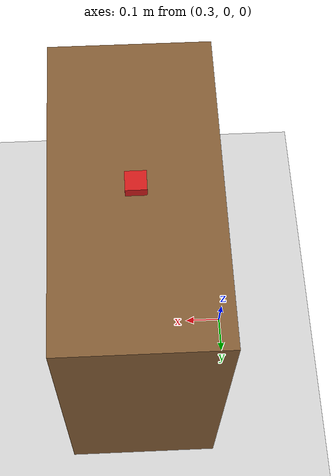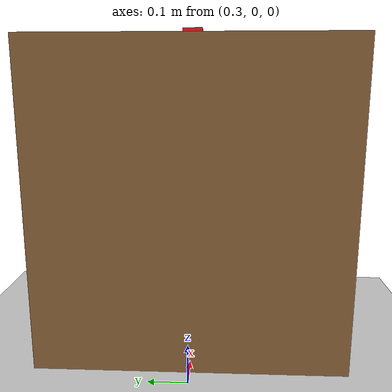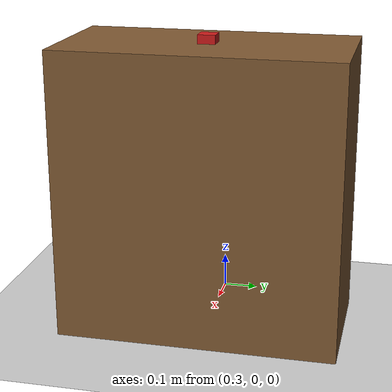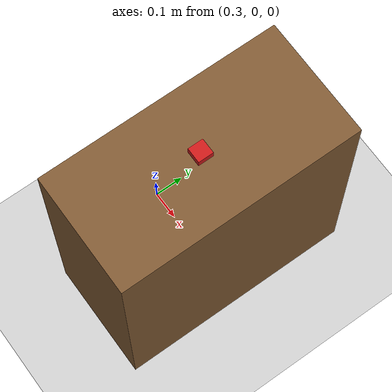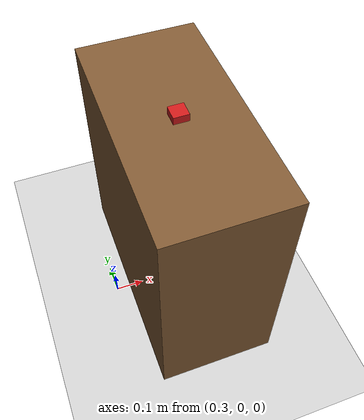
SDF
<?xml version="1.0" ?>
<sdf version="1.8">
  <world name="fr3_world">

    <physics name="1ms" type="dartsim">
      <max_step_size>0.001</max_step_size>
      <real_time_factor>1.0</real_time_factor>
    </physics>

    <plugin filename="gz-sim-physics-system"
        name="gz::sim::systems::Physics">
      <engine>
        <filename>gz-physics-dartsim-plugin</filename>
      </engine>
    </plugin>
    <plugin filename="gz-sim-user-commands-system"
            name="gz::sim::systems::UserCommands"/>
    <plugin filename="gz-sim-scene-broadcaster-system"
            name="gz::sim::systems::SceneBroadcaster"/>
    <plugin filename="gz-sim-sensors-system"
            name="gz::sim::systems::Sensors">
      <render_engine>ogre2</render_engine>
    </plugin>

    <light type="directional" name="sun">
      <cast_shadows>true</cast_shadows>
      <pose>0 0 10 0 0 0</pose>
      <diffuse>0.8 0.8 0.8 1</diffuse>
      <specular>0.2 0.2 0.2 1</specular>
      <attenuation>
        <range>1000</range>
        <constant>0.9</constant>
        <linear>0.01</linear>
        <quadratic>0.001</quadratic>
      </attenuation>
      <direction>-0.5 0.1 -0.9</direction>
    </light>

    <model name="ground_plane">
      <static>true</static>
      <link name="link">
        <collision name="collision">
          <geometry><plane>
            <normal>0 0 1</normal>
          </plane></geometry>
        </collision>
        <visual name="visual">
          <geometry><plane>
            <normal>0 0 1</normal>
            <size>100 100</size>
          </plane></geometry>
          <material>
            <ambient>0.8 0.8 0.8 1</ambient>
            <diffuse>0.8 0.8 0.8 1</diffuse>
          </material>
        </visual>
      </link>
    </model>

   <!-- Table — flat surface, positioned reachably in front of FR3 -->
    <model name="table">
      <static>true</static>
      <pose>0.55 0 0.4 0 0 0</pose>
      <link name="table_link">
        <collision name="collision">
          <geometry>
            <box><size>0.4 0.8 0.8</size></box>
          </geometry>
        </collision>
        <visual name="visual">
          <geometry>
            <box><size>0.4 0.8 0.85</size></box>
          </geometry>
          <material>
            <ambient>0.5 0.35 0.2 1</ambient>
            <diffuse>0.5 0.35 0.2 1</diffuse>
          </material>
        </visual>
      </link>
    </model>

    <!-- Target box — sits on table surface  -->
    <model name="target_box">
      <static>false</static>
      <pose>0.55 0 0.825 0 0 0</pose>
      <link name="box_link">
        <inertial>
          <mass>0.1</mass>
          <inertia>
            <ixx>0.0001</ixx><iyy>0.0001</iyy><izz>0.0001</izz>
            <ixy>0</ixy><ixz>0</ixz><iyz>0</iyz>
          </inertia>
        </inertial>
        <collision name="collision">
          <geometry>
            <box><size>0.05 0.05 0.05</size></box>
          </geometry>
        </collision>
        <visual name="visual">
          <geometry>
            <box><size>0.05 0.05 0.05</size></box>
          </geometry>
          <material>
            <ambient>0.8 0.1 0.1 1</ambient>
            <diffuse>0.8 0.1 0.1 1</diffuse>
          </material>
        </visual>
      </link>
    </model>

  </world>
</sdf>
